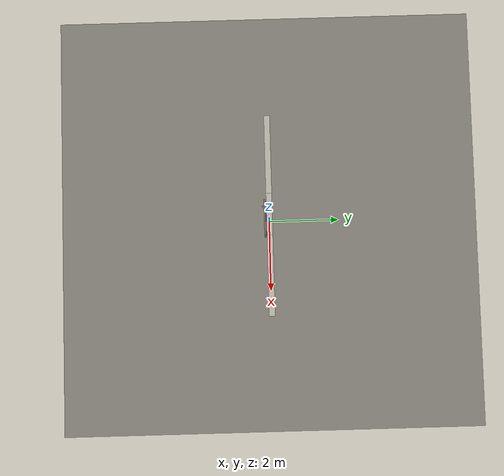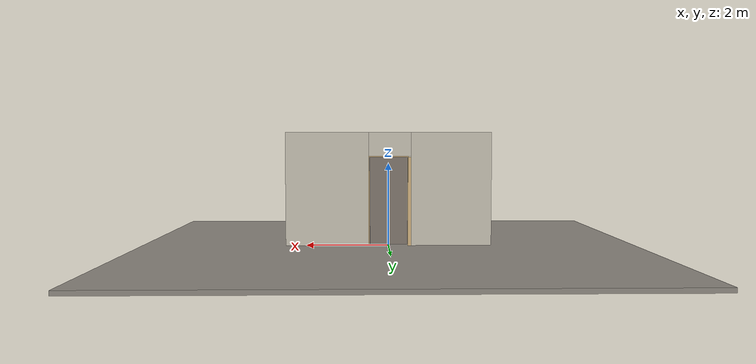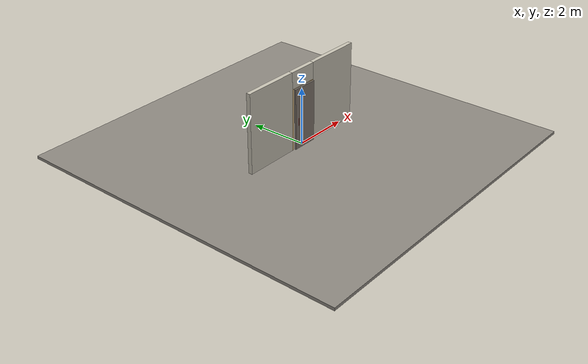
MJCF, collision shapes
<?xml version="1.0" ?>
<mujoco model="db0512_sliding_single_minimal">
  <compiler angle="radian" meshdir="../../hardware" texturedir="../../textures" autolimits="true" inertiafromgeom="false"/>
  <option timestep="0.002" integrator="implicitfast" cone="elliptic" impratio="10" noslip_iterations="3">
    <flag multiccd="enable"/>
  </option>
  <size memory="16M"/>
  <default>
    <geom condim="4" solref="0.005 1" solimp="0.95 0.99 0.001"/>
    <joint solreflimit="0.005 1" solimplimit="0.95 0.99 0.001"/>
    <tendon solreflimit="0.005 1"/>
    <equality solref="0.002 1"/>
  </default>
  <visual>
    <headlight ambient="0.4 0.4 0.4" diffuse="0.7 0.7 0.7" specular="0.2 0.2 0.2"/>
    <quality shadowsize="4096"/>
    <map znear="0.01" zfar="60"/>
  </visual>
  <asset>
    <mesh name="pull_2b47e55ff8" file="pull_2b47e55ff8.obj"/>
    <material name="mat_floor" rgba="0.55 0.53 0.5 1" specular="0.2" shininess="0.15" reflectance="0"/>
    <material name="mat_wall" rgba="0.78 0.76 0.7 1" specular="0.2" shininess="0.1" reflectance="0"/>
    <material name="mat_frame" rgba="0.82 0.7 0.5 1" specular="0.2" shininess="0.45" reflectance="0"/>
    <material name="mat_track" rgba="0.05 0.05 0.05 1" specular="0.38" shininess="0.3" reflectance="0.12"/>
    <material name="mat_leaf" rgba="0.5 0.46 0.425 1" specular="0.2" shininess="0.15" reflectance="0"/>
    <material name="mat_leaf_panel" rgba="0.46 0.423 0.391 1" specular="0.2" shininess="0.15" reflectance="0"/>
    <material name="mat_roller" rgba="0.65 0.66 0.68 1" specular="0.74" shininess="0.5" reflectance="0.36"/>
    <material name="mat_op_black_matte_metal" rgba="0.05 0.05 0.05 1" specular="0.38" shininess="0.3" reflectance="0.12"/>
    <material name="mat_teardrop" rgba="0.05 0.05 0.05 1" specular="0.38" shininess="0.3" reflectance="0.12"/>
    <material name="mat_hook" rgba="0.75 0.76 0.77 1" specular="0.8" shininess="0.65" reflectance="0.4"/>
    <texture name="skybox" type="skybox" builtin="gradient" rgb1="0.6 0.7 0.85" rgb2="0.9 0.92 0.95" width="256" height="256"/>
  </asset>
  <worldbody>
    <light name="sun" pos="1.5 -2.5 4" dir="-0.3 0.5 -0.8" directional="true" diffuse="0.8 0.8 0.8" specular="0.3 0.3 0.3" castshadow="true"/>
    <light name="fill" pos="-1.5 2.5 3" dir="0.3 -0.5 -0.7" directional="true" diffuse="0.35 0.35 0.4" castshadow="false"/>
    <camera name="robot_view" pos="0 -2.644375 1.817425" xyaxes="1 0 0 0 0.26963 0.962964" fovy="52"/>
    <camera name="far_view" pos="0 2.644375 1.817425" xyaxes="-1 0 0 0 -0.26963 0.962964" fovy="52"/>
    <camera name="iso" pos="2.009725 -2.221275 2.240525" xyaxes="0.741536 0.670913 0 -0.242917 0.268487 0.932151" fovy="46"/>
    <camera name="detail_handle" pos="-0.187 -0.9815 1.28" xyaxes="0.97561 0.219512 0 -0.070934 0.315262 0.94635" fovy="38"/>
    <geom name="floor" type="box" size="6 6 0.05" pos="0 0 -0.05" material="mat_floor" group="0" contype="1" conaffinity="1" friction="0.8 0.005 0.0001" density="2400"/>
    <geom name="wall_left" type="box" size="0.977 0.0725 1.377" pos="-1.523 0 1.377" material="mat_wall" group="0" contype="1" conaffinity="1" friction="0.6 0.005 0.0001" density="800"/>
    <geom name="wall_right" type="box" size="1.007 0.0725 1.377" pos="1.493 0 1.377" material="mat_wall" group="0" contype="1" conaffinity="1" friction="0.6 0.005 0.0001" density="800"/>
    <geom name="wall_header" type="box" size="0.516 0.0725 0.2905" pos="-0.03 0 2.4635" material="mat_wall" group="0" contype="1" conaffinity="1" friction="0.6 0.005 0.0001" density="800"/>
    <geom name="jamb_r" type="box" size="0.0095 0.0725 1.077" pos="0.4765 0 1.077" material="mat_frame" group="0" contype="1" conaffinity="1" friction="0.6 0.005 0.0001" density="300"/>
    <geom name="jamb_head" type="box" size="0.486 0.0725 0.0095" pos="0 0 2.1635" material="mat_frame" group="0" contype="1" conaffinity="1" friction="0.6 0.005 0.0001" density="300"/>
    <geom name="jamb_latch_0" type="box" size="0.0395 0.0725 1.077" pos="-0.5065 0 1.077" material="mat_frame" group="0" contype="1" conaffinity="1" friction="0.6 0.005 0.0001" density="300"/>
    <site name="approach_point" pos="0 -1.5 0" quat="1 0 0 0" size="0.05" rgba="0.2 0.9 0.2 0.5" group="4"/>
    <site name="goal_point" pos="0 1.5 0" quat="1 0 0 0" size="0.05" rgba="0.2 0.9 0.2 0.5" group="4"/>
    <site name="door_plane_center" pos="0 0 1.077" quat="1 0 0 0" size="0.02" rgba="0.2 0.9 0.2 0.5" group="4"/>
    <body name="leaf" pos="0 -0.1145 0">
      <inertial pos="-0.00435 -0.000701 1.078064" mass="42.091617" quat="0.499408 0.501147 -0.498779 0.500662" diaginertia="2.970475382 15.801104661 18.754612143"/>
      <joint name="leaf_slide" type="slide" axis="1 0 0" limited="true" range="0 0.914" damping="4.110703" frictionloss="32.290319" armature="0.5"/>
      <geom name="leaf_slab" type="box" size="0.457 0.022 1.067" pos="0 0 1.079" material="mat_leaf" group="0" contype="1" conaffinity="1" friction="0.45 0.005 0.0001" density="1"/>
      <geom name="leaf_pull_n" type="mesh" mesh="pull_2b47e55ff8" pos="-0.367 -0.022 1" quat="0 0 -0.707107 0.707107" material="mat_op_black_matte_metal" group="1" contype="0" conaffinity="0" density="3000"/>
      <geom name="leaf_pull_col_n" type="capsule" size="0.006 0.13" pos="-0.367 -0.067 1" material="mat_op_black_matte_metal" group="3" contype="1" conaffinity="1" rgba="0.8 0.3 0.3 0.25" friction="0.7 0.01 0.0001" density="3000"/>
      <site name="leaf_pull_grip_n" pos="-0.367 -0.067 1" quat="1 0 0 0" size="0.012" rgba="0.2 0.9 0.2 0.5" group="4"/>
      <site name="leaf_edge_mid" pos="-0.457 0 1.079" quat="1 0 0 0" size="0.02" rgba="0.2 0.9 0.2 0.5" group="4"/>
    </body>
  </worldbody>
  <sensor>
    <jointpos name="leaf_slide_pos" joint="leaf_slide"/>
    <jointvel name="leaf_slide_vel" joint="leaf_slide"/>
  </sensor>
</mujoco>
